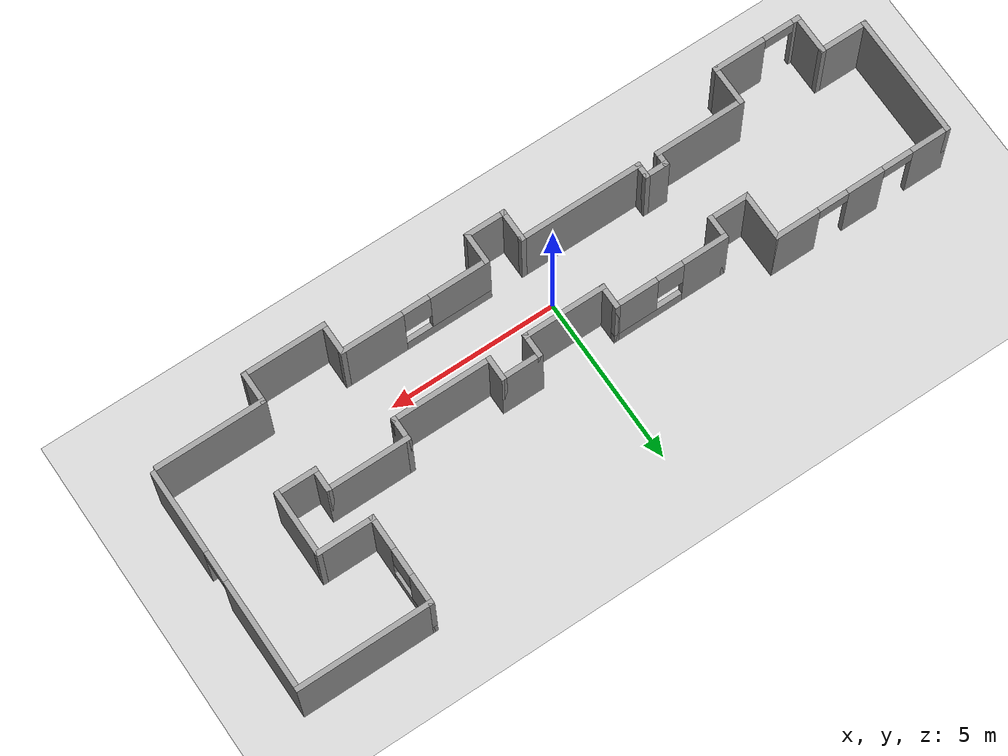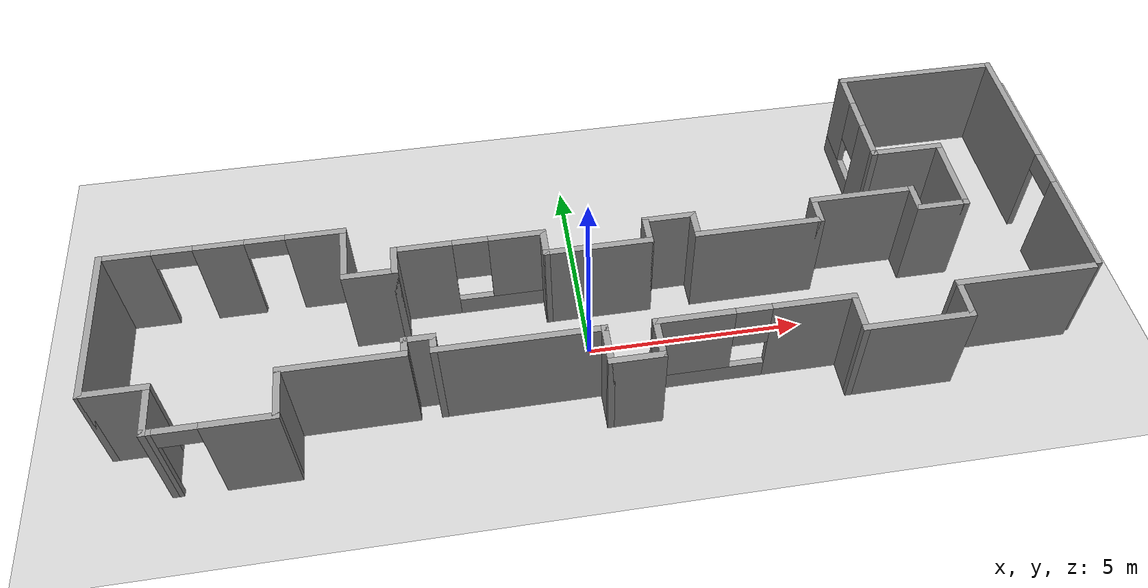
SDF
<sdf version="1.6">
 <world name="default">
  <light name="sun" type="directional">
   <pose>0 0 10 0 -0 0</pose>
   <diffuse>0.8 0.8 0.8 1</diffuse>
   <specular>0.1 0.1 0.1 1</specular>
   <attenuation>
    <range>1000</range>
    <constant>0.9</constant>
    <linear>0.01</linear>
    <quadratic>0.001</quadratic>
   </attenuation>
   <direction>-0.5 0.5 -1</direction>
  </light>
  <model name="ground_plane">
   <static>1</static>
   <link name="link">
    <collision name="collision">
     <geometry><plane><normal>0 0 1</normal><size>100 100</size></plane></geometry>
     <surface><friction><ode><mu>100</mu><mu2>50</mu2></ode></friction></surface>
    </collision>
    <visual name="visual">
     <cast_shadows>0</cast_shadows>
     <geometry><plane><normal>0 0 1</normal><size>100 100</size></plane></geometry>
     <material>
      <script><uri>file://media/materials/scripts/gazebo.material</uri><name>Gazebo/Grey</name></script>
     </material>
    </visual>
   </link>
  </model>
  <gravity>0 0 -9.8</gravity>
  <magnetic_field>6e-06 2.3e-05 -4.2e-05</magnetic_field>
  <atmosphere type="adiabatic"/>
  <physics name="default_physics" default="0" type="ode">
   <max_step_size>0.001</max_step_size>
   <real_time_factor>1</real_time_factor>
   <real_time_update_rate>1000</real_time_update_rate>
  </physics>
  <scene><ambient>0.4 0.4 0.4 1</ambient><background>0.7 0.7 0.7 1</background><shadows>1</shadows></scene>
  <spherical_coordinates>
   <surface_model>EARTH_WGS84</surface_model>
   <latitude_deg>0</latitude_deg>
   <longitude_deg>0</longitude_deg>
   <elevation>0</elevation>
   <heading_deg>0</heading_deg>
  </spherical_coordinates>
  <model name="corridor_simple">
   <pose>0.30069 1.62161 0 0 -0 0</pose>
   <link name="Wall_0">
    <collision name="Wall_0_Collision">
     <geometry><box><size>3.25 0.15 2.5</size></box></geometry>
     <pose>0 0 1.25 0 -0 0</pose>
    </collision>
    <visual name="Wall_0_Visual">
     <pose>0 0 1.25 0 -0 0</pose>
     <geometry><box><size>3.25 0.15 2.5</size></box></geometry>
     <material>
      <script><uri>file://media/materials/scripts/gazebo.material</uri><name>Gazebo/Grey</name></script>
      <ambient>1 1 1 1</ambient>
     </material>
     <meta><layer>0</layer></meta>
    </visual>
    <pose>9.2 -2.8 0 0 -0 3.14159</pose>
   </link>
   <link name="Wall_1">
    <collision name="Wall_1_Collision">
     <geometry><box><size>1 0.15 2.5</size></box></geometry>
     <pose>0 0 1.25 0 -0 0</pose>
    </collision>
    <visual name="Wall_1_Visual">
     <pose>0 0 1.25 0 -0 0</pose>
     <geometry><box><size>1 0.15 2.5</size></box></geometry>
     <material>
      <script><uri>file://media/materials/scripts/gazebo.material</uri><name>Gazebo/Grey</name></script>
      <ambient>1 1 1 1</ambient>
     </material>
     <meta><layer>0</layer></meta>
    </visual>
    <pose>7.65 -3.225 0 0 0 -1.5708</pose>
   </link>
   <link name="Wall_12">
    <collision name="Wall_12_Collision">
     <geometry><box><size>1 0.15 2.5</size></box></geometry>
     <pose>0 0 1.25 0 -0 0</pose>
    </collision>
    <visual name="Wall_12_Visual">
     <pose>0 0 1.25 0 -0 0</pose>
     <geometry><box><size>1 0.15 2.5</size></box></geometry>
     <material>
      <script><uri>file://media/materials/scripts/gazebo.material</uri><name>Gazebo/Grey</name></script>
      <ambient>1 1 1 1</ambient>
     </material>
     <meta><layer>0</layer></meta>
    </visual>
    <pose>-0.15 -3.225 0 0 -0 1.5708</pose>
   </link>
   <link name="Wall_13">
    <collision name="Wall_13_Collision">
     <geometry><box><size>3.75 0.15 2.5</size></box></geometry>
     <pose>0 0 1.25 0 -0 0</pose>
    </collision>
    <visual name="Wall_13_Visual">
     <pose>0 0 1.25 0 -0 0</pose>
     <geometry><box><size>3.75 0.15 2.5</size></box></geometry>
     <material>
      <script><uri>file://media/materials/scripts/gazebo.material</uri><name>Gazebo/Grey</name></script>
      <ambient>1 1 1 1</ambient>
     </material>
     <meta><layer>0</layer></meta>
    </visual>
    <pose>-1.95 -2.8 0 0 -0 3.14159</pose>
   </link>
   <link name="Wall_14">
    <collision name="Wall_14_Collision">
     <geometry><box><size>0.5 0.15 2.5</size></box></geometry>
     <pose>0 0 1.25 0 -0 0</pose>
    </collision>
    <visual name="Wall_14_Visual">
     <pose>0 0 1.25 0 -0 0</pose>
     <geometry><box><size>0.5 0.15 2.5</size></box></geometry>
     <material>
      <script><uri>file://media/materials/scripts/gazebo.material</uri><name>Gazebo/Grey</name></script>
      <ambient>1 1 1 1</ambient>
     </material>
     <meta><layer>0</layer></meta>
    </visual>
    <pose>-3.75 -2.625 0 0 -0 1.5708</pose>
   </link>
   <link name="Wall_15">
    <collision name="Wall_15_Collision">
     <geometry><box><size>0.75 0.15 2.5</size></box></geometry>
     <pose>0 0 1.25 0 -0 0</pose>
    </collision>
    <visual name="Wall_15_Visual">
     <pose>0 0 1.25 0 -0 0</pose>
     <geometry><box><size>0.75 0.15 2.5</size></box></geometry>
     <material>
      <script><uri>file://media/materials/scripts/gazebo.material</uri><name>Gazebo/Grey</name></script>
      <ambient>1 1 1 1</ambient>
     </material>
     <meta><layer>0</layer></meta>
    </visual>
    <pose>-4.05 -2.45 0 0 -0 3.14159</pose>
   </link>
   <link name="Wall_16">
    <collision name="Wall_16_Collision">
     <geometry><box><size>0.5 0.15 2.5</size></box></geometry>
     <pose>0 0 1.25 0 -0 0</pose>
    </collision>
    <visual name="Wall_16_Visual">
     <pose>0 0 1.25 0 -0 0</pose>
     <geometry><box><size>0.5 0.15 2.5</size></box></geometry>
     <material>
      <script><uri>file://media/materials/scripts/gazebo.material</uri><name>Gazebo/Grey</name></script>
      <ambient>1 1 1 1</ambient>
     </material>
     <meta><layer>0</layer></meta>
    </visual>
    <pose>-4.35 -2.625 0 0 0 -1.5708</pose>
   </link>
   <link name="Wall_17">
    <collision name="Wall_17_Collision">
     <geometry><box><size>2.75 0.15 2.5</size></box></geometry>
     <pose>0 0 1.25 0 -0 0</pose>
    </collision>
    <visual name="Wall_17_Visual">
     <pose>0 0 1.25 0 -0 0</pose>
     <geometry><box><size>2.75 0.15 2.5</size></box></geometry>
     <material>
      <script><uri>file://media/materials/scripts/gazebo.material</uri><name>Gazebo/Grey</name></script>
      <ambient>1 1 1 1</ambient>
     </material>
     <meta><layer>0</layer></meta>
    </visual>
    <pose>-5.65 -2.8 0 0 -0 3.14159</pose>
   </link>
   <link name="Wall_18">
    <collision name="Wall_18_Collision">
     <geometry><box><size>1.25 0.15 2.5</size></box></geometry>
     <pose>0 0 1.25 0 -0 0</pose>
    </collision>
    <visual name="Wall_18_Visual">
     <pose>0 0 1.25 0 -0 0</pose>
     <geometry><box><size>1.25 0.15 2.5</size></box></geometry>
     <material>
      <script><uri>file://media/materials/scripts/gazebo.material</uri><name>Gazebo/Grey</name></script>
      <ambient>1 1 1 1</ambient>
     </material>
     <meta><layer>0</layer></meta>
    </visual>
    <pose>-6.95 -3.35 0 0 0 -1.5708</pose>
   </link>
   <link name="Wall_19">
    <pose>-8.25 -3.9 0 0 -0 3.14159</pose>
    <visual name="Wall_19_Visual_0">
     <pose>-0.576964 0 1.25 0 -0 0</pose>
     <geometry><box><size>1.59607 0.15 2.5</size></box></geometry>
     <material>
      <script><uri>file://media/materials/scripts/gazebo.material</uri><name>Gazebo/Grey</name></script>
      <ambient>1 1 1 1</ambient>
     </material>
     <meta><layer>0</layer></meta>
    </visual>
    <collision name="Wall_19_Collision_0">
     <geometry><box><size>1.59607 0.15 2.5</size></box></geometry>
     <pose>-0.576964 0 1.25 0 -0 0</pose>
    </collision>
    <visual name="Wall_19_Visual_1">
     <pose>1.24804 0 1.25 0 -0 0</pose>
     <geometry><box><size>0.253927 0.15 2.5</size></box></geometry>
     <material>
      <script><uri>file://media/materials/scripts/gazebo.material</uri><name>Gazebo/Grey</name></script>
      <ambient>1 1 1 1</ambient>
     </material>
     <meta><layer>0</layer></meta>
    </visual>
    <collision name="Wall_19_Collision_1">
     <geometry><box><size>0.253927 0.15 2.5</size></box></geometry>
     <pose>1.24804 0 1.25 0 -0 0</pose>
    </collision>
    <visual name="Wall_19_Visual_2">
     <pose>0.671073 0 2.25 0 -0 0</pose>
     <geometry><box><size>0.9 0.15 0.5</size></box></geometry>
     <material>
      <script><uri>file://media/materials/scripts/gazebo.material</uri><name>Gazebo/Grey</name></script>
      <ambient>1 1 1 1</ambient>
     </material>
     <meta><layer>0</layer></meta>
    </visual>
    <collision name="Wall_19_Collision_2">
     <geometry><box><size>0.9 0.15 0.5</size></box></geometry>
     <pose>0.671073 0 2.25 0 -0 0</pose>
    </collision>
   </link>
   <link name="Wall_2">
    <collision name="Wall_2_Collision">
     <geometry><box><size>2.5 0.15 2.5</size></box></geometry>
     <pose>0 0 1.25 0 -0 0</pose>
    </collision>
    <visual name="Wall_2_Visual">
     <pose>0 0 1.25 0 -0 0</pose>
     <geometry><box><size>2.5 0.15 2.5</size></box></geometry>
     <material>
      <script><uri>file://media/materials/scripts/gazebo.material</uri><name>Gazebo/Grey</name></script>
      <ambient>1 1 1 1</ambient>
     </material>
     <meta><layer>0</layer></meta>
    </visual>
    <pose>6.475 -3.65 0 0 -0 3.14159</pose>
   </link>
   <link name="Wall_20">
    <collision name="Wall_20_Collision">
     <geometry><box><size>1.25 0.15 2.5</size></box></geometry>
     <pose>0 0 1.25 0 -0 0</pose>
    </collision>
    <visual name="Wall_20_Visual">
     <pose>0 0 1.25 0 -0 0</pose>
     <geometry><box><size>1.25 0.15 2.5</size></box></geometry>
     <material>
      <script><uri>file://media/materials/scripts/gazebo.material</uri><name>Gazebo/Grey</name></script>
      <ambient>1 1 1 1</ambient>
     </material>
     <meta><layer>0</layer></meta>
    </visual>
    <pose>-9.55 -3.35 0 0 -0 1.5708</pose>
   </link>
   <link name="Wall_21">
    <collision name="Wall_21_Collision">
     <geometry><box><size>1.5 0.15 2.5</size></box></geometry>
     <pose>0 0 1.25 0 -0 0</pose>
    </collision>
    <visual name="Wall_21_Visual">
     <pose>0 0 1.25 0 -0 0</pose>
     <geometry><box><size>1.5 0.15 2.5</size></box></geometry>
     <material>
      <script><uri>file://media/materials/scripts/gazebo.material</uri><name>Gazebo/Grey</name></script>
      <ambient>1 1 1 1</ambient>
     </material>
     <meta><layer>0</layer></meta>
    </visual>
    <pose>-10.225 -2.8 0 0 -0 3.14159</pose>
   </link>
   <link name="Wall_22">
    <collision name="Wall_22_Collision">
     <geometry><box><size>3.75 0.15 2.5</size></box></geometry>
     <pose>0 0 1.25 0 -0 0</pose>
    </collision>
    <visual name="Wall_22_Visual">
     <pose>0 0 1.25 0 -0 0</pose>
     <geometry><box><size>3.75 0.15 2.5</size></box></geometry>
     <material>
      <script><uri>file://media/materials/scripts/gazebo.material</uri><name>Gazebo/Grey</name></script>
      <ambient>1 1 1 1</ambient>
     </material>
     <meta><layer>0</layer></meta>
    </visual>
    <pose>-10.9 -1 0 0 -0 1.5708</pose>
   </link>
   <link name="Wall_23">
    <pose>-8.225 0.8 0 0 -0 0</pose>
    <visual name="Wall_23_Visual_0">
     <pose>-2.14917 0 1.25 0 -0 0</pose>
     <geometry><box><size>1.20166 0.15 2.5</size></box></geometry>
     <material>
      <script><uri>file://media/materials/scripts/gazebo.material</uri><name>Gazebo/Grey</name></script>
      <ambient>1 1 1 1</ambient>
     </material>
     <meta><layer>0</layer></meta>
    </visual>
    <collision name="Wall_23_Collision_0">
     <geometry><box><size>1.20166 0.15 2.5</size></box></geometry>
     <pose>-2.14917 0 1.25 0 -0 0</pose>
    </collision>
    <visual name="Wall_23_Visual_1">
     <pose>-0.082609 0 1.25 0 -0 0</pose>
     <geometry><box><size>1.13147 0.15 2.5</size></box></geometry>
     <material>
      <script><uri>file://media/materials/scripts/gazebo.material</uri><name>Gazebo/Grey</name></script>
      <ambient>1 1 1 1</ambient>
     </material>
     <meta><layer>0</layer></meta>
    </visual>
    <collision name="Wall_23_Collision_1">
     <geometry><box><size>1.13147 0.15 2.5</size></box></geometry>
     <pose>-0.082609 0 1.25 0 -0 0</pose>
    </collision>
    <visual name="Wall_23_Visual_2">
     <pose>2.06656 0 1.25 0 -0 0</pose>
     <geometry><box><size>1.36687 0.15 2.5</size></box></geometry>
     <material>
      <script><uri>file://media/materials/scripts/gazebo.material</uri><name>Gazebo/Grey</name></script>
      <ambient>1 1 1 1</ambient>
     </material>
     <meta><layer>0</layer></meta>
    </visual>
    <collision name="Wall_23_Collision_2">
     <geometry><box><size>1.36687 0.15 2.5</size></box></geometry>
     <pose>2.06656 0 1.25 0 -0 0</pose>
    </collision>
    <visual name="Wall_23_Visual_3">
     <pose>-1.09834 0 2.25 0 -0 0</pose>
     <geometry><box><size>0.9 0.15 0.5</size></box></geometry>
     <material>
      <script><uri>file://media/materials/scripts/gazebo.material</uri><name>Gazebo/Grey</name></script>
      <ambient>1 1 1 1</ambient>
     </material>
     <meta><layer>0</layer></meta>
    </visual>
    <collision name="Wall_23_Collision_3">
     <geometry><box><size>0.9 0.15 0.5</size></box></geometry>
     <pose>-1.09834 0 2.25 0 -0 0</pose>
    </collision>
    <visual name="Wall_23_Visual_4">
     <pose>0.933126 0 2.25 0 -0 0</pose>
     <geometry><box><size>0.9 0.15 0.5</size></box></geometry>
     <material>
      <script><uri>file://media/materials/scripts/gazebo.material</uri><name>Gazebo/Grey</name></script>
      <ambient>1 1 1 1</ambient>
     </material>
     <meta><layer>0</layer></meta>
    </visual>
    <collision name="Wall_23_Collision_4">
     <geometry><box><size>0.9 0.15 0.5</size></box></geometry>
     <pose>0.933126 0 2.25 0 -0 0</pose>
    </collision>
   </link>
   <link name="Wall_24">
    <collision name="Wall_24_Collision">
     <geometry><box><size>1.5 0.15 2.5</size></box></geometry>
     <pose>0 0 1.25 0 -0 0</pose>
    </collision>
    <visual name="Wall_24_Visual">
     <pose>0 0 1.25 0 -0 0</pose>
     <geometry><box><size>1.5 0.15 2.5</size></box></geometry>
     <material>
      <script><uri>file://media/materials/scripts/gazebo.material</uri><name>Gazebo/Grey</name></script>
      <ambient>1 1 1 1</ambient>
     </material>
     <meta><layer>0</layer></meta>
    </visual>
    <pose>-5.55 0.125 0 0 0 -1.5708</pose>
   </link>
   <link name="Wall_25">
    <collision name="Wall_25_Collision">
     <geometry><box><size>1.25 0.15 2.5</size></box></geometry>
     <pose>0 0 1.25 0 -0 0</pose>
    </collision>
    <visual name="Wall_25_Visual">
     <pose>0 0 1.25 0 -0 0</pose>
     <geometry><box><size>1.25 0.15 2.5</size></box></geometry>
     <material>
      <script><uri>file://media/materials/scripts/gazebo.material</uri><name>Gazebo/Grey</name></script>
      <ambient>1 1 1 1</ambient>
     </material>
     <meta><layer>0</layer></meta>
    </visual>
    <pose>-5 -0.55 0 0 -0 0</pose>
   </link>
   <link name="Wall_26">
    <collision name="Wall_26_Collision">
     <geometry><box><size>0.75 0.15 2.5</size></box></geometry>
     <pose>0 0 1.25 0 -0 0</pose>
    </collision>
    <visual name="Wall_26_Visual">
     <pose>0 0 1.25 0 -0 0</pose>
     <geometry><box><size>0.75 0.15 2.5</size></box></geometry>
     <material>
      <script><uri>file://media/materials/scripts/gazebo.material</uri><name>Gazebo/Grey</name></script>
      <ambient>1 1 1 1</ambient>
     </material>
     <meta><layer>0</layer></meta>
    </visual>
    <pose>-4.45 -0.25 0 0 -0 1.5708</pose>
   </link>
   <link name="Wall_27">
    <pose>-2.775 0.05 0 0 -0 0</pose>
    <visual name="Wall_27_Visual_0">
     <pose>-1.0606 0 1.25 0 -0 0</pose>
     <geometry><box><size>1.37879 0.15 2.5</size></box></geometry>
     <material>
      <script><uri>file://media/materials/scripts/gazebo.material</uri><name>Gazebo/Grey</name></script>
      <ambient>1 1 1 1</ambient>
     </material>
     <meta><layer>0</layer></meta>
    </visual>
    <collision name="Wall_27_Collision_0">
     <geometry><box><size>1.37879 0.15 2.5</size></box></geometry>
     <pose>-1.0606 0 1.25 0 -0 0</pose>
    </collision>
    <visual name="Wall_27_Visual_1">
     <pose>0.689397 0 0.25 0 -0 0</pose>
     <geometry><box><size>2.12121 0.15 0.5</size></box></geometry>
     <material>
      <script><uri>file://media/materials/scripts/gazebo.material</uri><name>Gazebo/Grey</name></script>
      <ambient>1 1 1 1</ambient>
     </material>
     <meta><layer>0</layer></meta>
    </visual>
    <collision name="Wall_27_Collision_1">
     <geometry><box><size>2.12121 0.15 0.5</size></box></geometry>
     <pose>0.689397 0 0.25 0 -0 0</pose>
    </collision>
    <visual name="Wall_27_Visual_2">
     <pose>1.0894 0 1.5 0 -0 0</pose>
     <geometry><box><size>1.32121 0.15 2</size></box></geometry>
     <material>
      <script><uri>file://media/materials/scripts/gazebo.material</uri><name>Gazebo/Grey</name></script>
      <ambient>1 1 1 1</ambient>
     </material>
     <meta><layer>0</layer></meta>
    </visual>
    <collision name="Wall_27_Collision_2">
     <geometry><box><size>1.32121 0.15 2</size></box></geometry>
     <pose>1.0894 0 1.5 0 -0 0</pose>
    </collision>
    <visual name="Wall_27_Visual_3">
     <pose>0.028793 0 1.9 0 -0 0</pose>
     <geometry><box><size>0.8 0.15 1.2</size></box></geometry>
     <material>
      <script><uri>file://media/materials/scripts/gazebo.material</uri><name>Gazebo/Grey</name></script>
      <ambient>1 1 1 1</ambient>
     </material>
     <meta><layer>0</layer></meta>
    </visual>
    <collision name="Wall_27_Collision_3">
     <geometry><box><size>0.8 0.15 1.2</size></box></geometry>
     <pose>0.028793 0 1.9 0 -0 0</pose>
    </collision>
   </link>
   <link name="Wall_28">
    <collision name="Wall_28_Collision">
     <geometry><box><size>0.75 0.15 2.5</size></box></geometry>
     <pose>0 0 1.25 0 -0 0</pose>
    </collision>
    <visual name="Wall_28_Visual">
     <pose>0 0 1.25 0 -0 0</pose>
     <geometry><box><size>0.75 0.15 2.5</size></box></geometry>
     <material>
      <script><uri>file://media/materials/scripts/gazebo.material</uri><name>Gazebo/Grey</name></script>
      <ambient>1 1 1 1</ambient>
     </material>
     <meta><layer>0</layer></meta>
    </visual>
    <pose>-1.1 -0.25 0 0 0 -1.5708</pose>
   </link>
   <link name="Wall_29">
    <collision name="Wall_29_Collision">
     <geometry><box><size>2.5 0.15 2.5</size></box></geometry>
     <pose>0 0 1.25 0 -0 0</pose>
    </collision>
    <visual name="Wall_29_Visual">
     <pose>0 0 1.25 0 -0 0</pose>
     <geometry><box><size>2.5 0.15 2.5</size></box></geometry>
     <material>
      <script><uri>file://media/materials/scripts/gazebo.material</uri><name>Gazebo/Grey</name></script>
      <ambient>1 1 1 1</ambient>
     </material>
     <meta><layer>0</layer></meta>
    </visual>
    <pose>0.075 -0.55 0 0 -0 0</pose>
   </link>
   <link name="Wall_3">
    <collision name="Wall_3_Collision">
     <geometry><box><size>1 0.15 2.5</size></box></geometry>
     <pose>0 0 1.25 0 -0 0</pose>
    </collision>
    <visual name="Wall_3_Visual">
     <pose>0 0 1.25 0 -0 0</pose>
     <geometry><box><size>1 0.15 2.5</size></box></geometry>
     <material>
      <script><uri>file://media/materials/scripts/gazebo.material</uri><name>Gazebo/Grey</name></script>
      <ambient>1 1 1 1</ambient>
     </material>
     <meta><layer>0</layer></meta>
    </visual>
    <pose>5.3 -3.225 0 0 -0 1.5708</pose>
   </link>
   <link name="Wall_30">
    <collision name="Wall_30_Collision">
     <geometry><box><size>0.75 0.15 2.5</size></box></geometry>
     <pose>0 0 1.25 0 -0 0</pose>
    </collision>
    <visual name="Wall_30_Visual">
     <pose>0 0 1.25 0 -0 0</pose>
     <geometry><box><size>0.75 0.15 2.5</size></box></geometry>
     <material>
      <script><uri>file://media/materials/scripts/gazebo.material</uri><name>Gazebo/Grey</name></script>
      <ambient>1 1 1 1</ambient>
     </material>
     <meta><layer>0</layer></meta>
    </visual>
    <pose>1.25 -0.25 0 0 -0 1.5708</pose>
   </link>
   <link name="Wall_31">
    <collision name="Wall_31_Collision">
     <geometry><box><size>1.25 0.15 2.5</size></box></geometry>
     <pose>0 0 1.25 0 -0 0</pose>
    </collision>
    <visual name="Wall_31_Visual">
     <pose>0 0 1.25 0 -0 0</pose>
     <geometry><box><size>1.25 0.15 2.5</size></box></geometry>
     <material>
      <script><uri>file://media/materials/scripts/gazebo.material</uri><name>Gazebo/Grey</name></script>
      <ambient>1 1 1 1</ambient>
     </material>
     <meta><layer>0</layer></meta>
    </visual>
    <pose>1.8 0.05 0 0 -0 0</pose>
   </link>
   <link name="Wall_32">
    <collision name="Wall_32_Collision">
     <geometry><box><size>0.75 0.15 2.5</size></box></geometry>
     <pose>0 0 1.25 0 -0 0</pose>
    </collision>
    <visual name="Wall_32_Visual">
     <pose>0 0 1.25 0 -0 0</pose>
     <geometry><box><size>0.75 0.15 2.5</size></box></geometry>
     <material>
      <script><uri>file://media/materials/scripts/gazebo.material</uri><name>Gazebo/Grey</name></script>
      <ambient>1 1 1 1</ambient>
     </material>
     <meta><layer>0</layer></meta>
    </visual>
    <pose>2.35 -0.25 0 0 0 -1.5708</pose>
   </link>
   <link name="Wall_33">
    <collision name="Wall_33_Collision">
     <geometry><box><size>3 0.15 2.5</size></box></geometry>
     <pose>0 0 1.25 0 -0 0</pose>
    </collision>
    <visual name="Wall_33_Visual">
     <pose>0 0 1.25 0 -0 0</pose>
     <geometry><box><size>3 0.15 2.5</size></box></geometry>
     <material>
      <script><uri>file://media/materials/scripts/gazebo.material</uri><name>Gazebo/Grey</name></script>
      <ambient>1 1 1 1</ambient>
     </material>
     <meta><layer>0</layer></meta>
    </visual>
    <pose>3.775 -0.55 0 0 -0 0</pose>
   </link>
   <link name="Wall_34">
    <collision name="Wall_34_Collision">
     <geometry><box><size>0.75 0.15 2.5</size></box></geometry>
     <pose>0 0 1.25 0 -0 0</pose>
    </collision>
    <visual name="Wall_34_Visual">
     <pose>0 0 1.25 0 -0 0</pose>
     <geometry><box><size>0.75 0.15 2.5</size></box></geometry>
     <material>
      <script><uri>file://media/materials/scripts/gazebo.material</uri><name>Gazebo/Grey</name></script>
      <ambient>1 1 1 1</ambient>
     </material>
     <meta><layer>0</layer></meta>
    </visual>
    <pose>5.2 -0.25 0 0 -0 1.5708</pose>
   </link>
   <link name="Wall_35">
    <collision name="Wall_35_Collision">
     <geometry><box><size>2.5 0.15 2.5</size></box></geometry>
     <pose>0 0 1.25 0 -0 0</pose>
    </collision>
    <visual name="Wall_35_Visual">
     <pose>0 0 1.25 0 -0 0</pose>
     <geometry><box><size>2.5 0.15 2.5</size></box></geometry>
     <material>
      <script><uri>file://media/materials/scripts/gazebo.material</uri><name>Gazebo/Grey</name></script>
      <ambient>1 1 1 1</ambient>
     </material>
     <meta><layer>0</layer></meta>
    </visual>
    <pose>6.375 0.05 0 0 -0 0</pose>
   </link>
   <link name="Wall_36">
    <collision name="Wall_36_Collision">
     <geometry><box><size>0.75 0.15 2.5</size></box></geometry>
     <pose>0 0 1.25 0 -0 0</pose>
    </collision>
    <visual name="Wall_36_Visual">
     <pose>0 0 1.25 0 -0 0</pose>
     <geometry><box><size>0.75 0.15 2.5</size></box></geometry>
     <material>
      <script><uri>file://media/materials/scripts/gazebo.material</uri><name>Gazebo/Grey</name></script>
      <ambient>1 1 1 1</ambient>
     </material>
     <meta><layer>0</layer></meta>
    </visual>
    <pose>7.55 -0.25 0 0 0 -1.5708</pose>
   </link>
   <link name="Wall_37">
    <collision name="Wall_37_Collision">
     <geometry><box><size>1.25 0.15 2.5</size></box></geometry>
     <pose>0 0 1.25 0 -0 0</pose>
    </collision>
    <visual name="Wall_37_Visual">
     <pose>0 0 1.25 0 -0 0</pose>
     <geometry><box><size>1.25 0.15 2.5</size></box></geometry>
     <material>
      <script><uri>file://media/materials/scripts/gazebo.material</uri><name>Gazebo/Grey</name></script>
      <ambient>1 1 1 1</ambient>
     </material>
     <meta><layer>0</layer></meta>
    </visual>
    <pose>8.1 -0.55 0 0 -0 0</pose>
   </link>
   <link name="Wall_38">
    <collision name="Wall_38_Collision">
     <geometry><box><size>2 0.15 2.5</size></box></geometry>
     <pose>0 0 1.25 0 -0 0</pose>
    </collision>
    <visual name="Wall_38_Visual">
     <pose>0 0 1.25 0 -0 0</pose>
     <geometry><box><size>2 0.15 2.5</size></box></geometry>
     <material>
      <script><uri>file://media/materials/scripts/gazebo.material</uri><name>Gazebo/Grey</name></script>
      <ambient>1 1 1 1</ambient>
     </material>
     <meta><layer>0</layer></meta>
    </visual>
    <pose>8.65 0.375 0 0 -0 1.5708</pose>
   </link>
   <link name="Wall_39">
    <collision name="Wall_39_Collision">
     <geometry><box><size>1.75 0.15 2.5</size></box></geometry>
     <pose>0 0 1.25 0 -0 0</pose>
    </collision>
    <visual name="Wall_39_Visual">
     <pose>0 0 1.25 0 -0 0</pose>
     <geometry><box><size>1.75 0.15 2.5</size></box></geometry>
     <material>
      <script><uri>file://media/materials/scripts/gazebo.material</uri><name>Gazebo/Grey</name></script>
      <ambient>1 1 1 1</ambient>
     </material>
     <meta><layer>0</layer></meta>
    </visual>
    <pose>7.85 1.3 0 0 -0 3.14159</pose>
   </link>
   <link name="Wall_4">
    <pose>3.125 -2.8 0 0 -0 3.14159</pose>
    <visual name="Wall_4_Visual_0">
     <pose>-1.30587 0 1.25 0 -0 0</pose>
     <geometry><box><size>1.88827 0.15 2.5</size></box></geometry>
     <material>
      <script><uri>file://media/materials/scripts/gazebo.material</uri><name>Gazebo/Grey</name></script>
      <ambient>1 1 1 1</ambient>
     </material>
     <meta><layer>0</layer></meta>
    </visual>
    <collision name="Wall_4_Collision_0">
     <geometry><box><size>1.88827 0.15 2.5</size></box></geometry>
     <pose>-1.30587 0 1.25 0 -0 0</pose>
    </collision>
    <visual name="Wall_4_Visual_1">
     <pose>0.944135 0 0.25 0 -0 0</pose>
     <geometry><box><size>2.61173 0.15 0.5</size></box></geometry>
     <material>
      <script><uri>file://media/materials/scripts/gazebo.material</uri><name>Gazebo/Grey</name></script>
      <ambient>1 1 1 1</ambient>
     </material>
     <meta><layer>0</layer></meta>
    </visual>
    <collision name="Wall_4_Collision_1">
     <geometry><box><size>2.61173 0.15 0.5</size></box></geometry>
     <pose>0.944135 0 0.25 0 -0 0</pose>
    </collision>
    <visual name="Wall_4_Visual_2">
     <pose>1.34414 0 1.5 0 -0 0</pose>
     <geometry><box><size>1.81173 0.15 2</size></box></geometry>
     <material>
      <script><uri>file://media/materials/scripts/gazebo.material</uri><name>Gazebo/Grey</name></script>
      <ambient>1 1 1 1</ambient>
     </material>
     <meta><layer>0</layer></meta>
    </visual>
    <collision name="Wall_4_Collision_2">
     <geometry><box><size>1.81173 0.15 2</size></box></geometry>
     <pose>1.34414 0 1.5 0 -0 0</pose>
    </collision>
    <visual name="Wall_4_Visual_3">
     <pose>0.038271 0 1.9 0 -0 0</pose>
     <geometry><box><size>0.8 0.15 1.2</size></box></geometry>
     <material>
      <script><uri>file://media/materials/scripts/gazebo.material</uri><name>Gazebo/Grey</name></script>
      <ambient>1 1 1 1</ambient>
     </material>
     <meta><layer>0</layer></meta>
    </visual>
    <collision name="Wall_4_Collision_3">
     <geometry><box><size>0.8 0.15 1.2</size></box></geometry>
     <pose>0.038271 0 1.9 0 -0 0</pose>
    </collision>
   </link>
   <link name="Wall_40">
    <pose>7.05 2.6 0 0 -0 1.5708</pose>
    <visual name="Wall_40_Visual_0">
     <pose>-0.862111 0 1.25 0 -0 0</pose>
     <geometry><box><size>1.02578 0.15 2.5</size></box></geometry>
     <material>
      <script><uri>file://media/materials/scripts/gazebo.material</uri><name>Gazebo/Grey</name></script>
      <ambient>1 1 1 1</ambient>
     </material>
     <meta><layer>0</layer></meta>
    </visual>
    <collision name="Wall_40_Collision_0">
     <geometry><box><size>1.02578 0.15 2.5</size></box></geometry>
     <pose>-0.862111 0 1.25 0 -0 0</pose>
    </collision>
    <visual name="Wall_40_Visual_1">
     <pose>0.512889 0 0.25 0 -0 0</pose>
     <geometry><box><size>1.72422 0.15 0.5</size></box></geometry>
     <material>
      <script><uri>file://media/materials/scripts/gazebo.material</uri><name>Gazebo/Grey</name></script>
      <ambient>1 1 1 1</ambient>
     </material>
     <meta><layer>0</layer></meta>
    </visual>
    <collision name="Wall_40_Collision_1">
     <geometry><box><size>1.72422 0.15 0.5</size></box></geometry>
     <pose>0.512889 0 0.25 0 -0 0</pose>
    </collision>
    <visual name="Wall_40_Visual_2">
     <pose>0.912889 0 1.5 0 -0 0</pose>
     <geometry><box><size>0.924222 0.15 2</size></box></geometry>
     <material>
      <script><uri>file://media/materials/scripts/gazebo.material</uri><name>Gazebo/Grey</name></script>
      <ambient>1 1 1 1</ambient>
     </material>
     <meta><layer>0</layer></meta>
    </visual>
    <collision name="Wall_40_Collision_2">
     <geometry><box><size>0.924222 0.15 2</size></box></geometry>
     <pose>0.912889 0 1.5 0 -0 0</pose>
    </collision>
    <visual name="Wall_40_Visual_3">
     <pose>0.050778 0 1.9 0 -0 0</pose>
     <geometry><box><size>0.8 0.15 1.2</size></box></geometry>
     <material>
      <script><uri>file://media/materials/scripts/gazebo.material</uri><name>Gazebo/Grey</name></script>
      <ambient>1 1 1 1</ambient>
     </material>
     <meta><layer>0</layer></meta>
    </visual>
    <collision name="Wall_40_Collision_3">
     <geometry><box><size>0.8 0.15 1.2</size></box></geometry>
     <pose>0.050778 0 1.9 0 -0 0</pose>
    </collision>
   </link>
   <link name="Wall_41">
    <collision name="Wall_41_Collision">
     <geometry><box><size>4 0.15 2.5</size></box></geometry>
     <pose>0 0 1.25 0 -0 0</pose>
    </collision>
    <visual name="Wall_41_Visual">
     <pose>0 0 1.25 0 -0 0</pose>
     <geometry><box><size>4 0.15 2.5</size></box></geometry>
     <material>
      <script><uri>file://media/materials/scripts/gazebo.material</uri><name>Gazebo/Grey</name></script>
      <ambient>1 1 1 1</ambient>
     </material>
     <meta><layer>0</layer></meta>
    </visual>
    <pose>8.975 3.9 0 0 -0 0</pose>
   </link>
   <link name="Wall_42">
    <pose>10.9 0.6 0 0 0 -1.5708</pose>
    <visual name="Wall_42_Visual_0">
     <pose>-1.7009 0 1.25 0 -0 0</pose>
     <geometry><box><size>3.34819 0.15 2.5</size></box></geometry>
     <material>
      <script><uri>file://media/materials/scripts/gazebo.material</uri><name>Gazebo/Grey</name></script>
      <ambient>1 1 1 1</ambient>
     </material>
     <meta><layer>0</layer></meta>
    </visual>
    <collision name="Wall_42_Collision_0">
     <geometry><box><size>3.34819 0.15 2.5</size></box></geometry>
     <pose>-1.7009 0 1.25 0 -0 0</pose>
    </collision>
    <visual name="Wall_42_Visual_1">
     <pose>2.1241 0 1.25 0 -0 0</pose>
     <geometry><box><size>2.50181 0.15 2.5</size></box></geometry>
     <material>
      <script><uri>file://media/materials/scripts/gazebo.material</uri><name>Gazebo/Grey</name></script>
      <ambient>1 1 1 1</ambient>
     </material>
     <meta><layer>0</layer></meta>
    </visual>
    <collision name="Wall_42_Collision_1">
     <geometry><box><size>2.50181 0.15 2.5</size></box></geometry>
     <pose>2.1241 0 1.25 0 -0 0</pose>
    </collision>
    <visual name="Wall_42_Visual_2">
     <pose>0.423191 0 2.25 0 -0 0</pose>
     <geometry><box><size>0.9 0.15 0.5</size></box></geometry>
     <material>
      <script><uri>file://media/materials/scripts/gazebo.material</uri><name>Gazebo/Grey</name></script>
      <ambient>1 1 1 1</ambient>
     </material>
     <meta><layer>0</layer></meta>
    </visual>
    <collision name="Wall_42_Collision_2">
     <geometry><box><size>0.9 0.15 0.5</size></box></geometry>
     <pose>0.423191 0 2.25 0 -0 0</pose>
    </collision>
   </link>
   <link name="Wall_5">
    <collision name="Wall_5_Collision">
     <geometry><box><size>1 0.15 2.5</size></box></geometry>
     <pose>0 0 1.25 0 -0 0</pose>
    </collision>
    <visual name="Wall_5_Visual">
     <pose>0 0 1.25 0 -0 0</pose>
     <geometry><box><size>1 0.15 2.5</size></box></geometry>
     <material>
      <script><uri>file://media/materials/scripts/gazebo.material</uri><name>Gazebo/Grey</name></script>
      <ambient>1 1 1 1</ambient>
     </material>
     <meta><layer>0</layer></meta>
    </visual>
    <pose>0.95 -3.225 0 0 0 -1.5708</pose>
   </link>
   <link name="Wall_9">
    <collision name="Wall_9_Collision">
     <geometry><box><size>1.25 0.15 2.5</size></box></geometry>
     <pose>0 0 1.25 0 -0 0</pose>
    </collision>
    <visual name="Wall_9_Visual">
     <pose>0 0 1.25 0 -0 0</pose>
     <geometry><box><size>1.25 0.15 2.5</size></box></geometry>
     <material>
      <script><uri>file://media/materials/scripts/gazebo.material</uri><name>Gazebo/Grey</name></script>
      <ambient>1 1 1 1</ambient>
     </material>
     <meta><layer>0</layer></meta>
    </visual>
    <pose>0.4 -3.65 0 0 -0 3.14159</pose>
   </link>
   <static>1</static>
  </model>
 </world>
</sdf>
